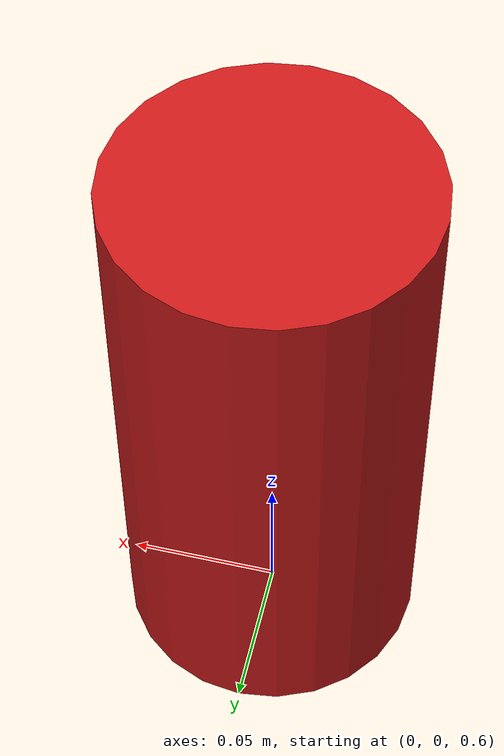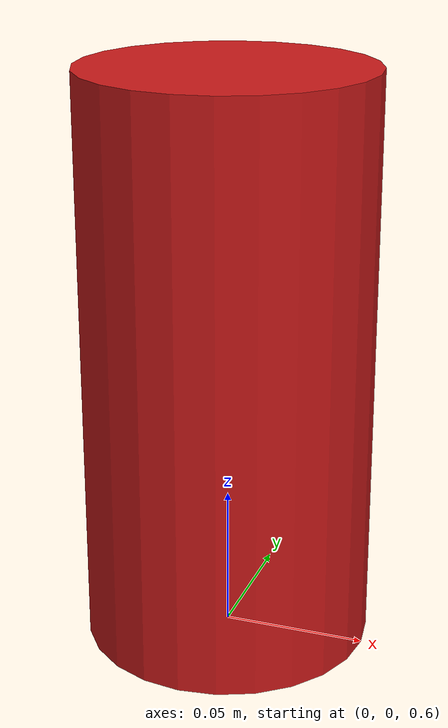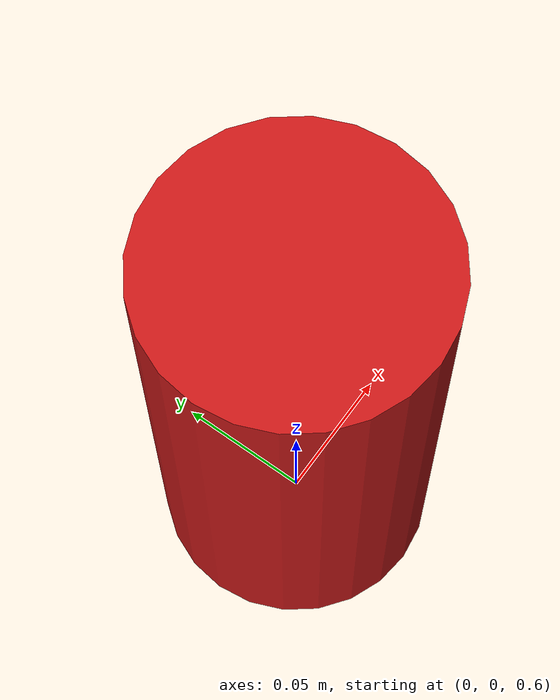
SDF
<?xml version="1.0" ?>
<sdf version="1.6">
  <world name="empty">
    <physics name="1ms" type="ignored">
      <max_step_size>0.001</max_step_size>
      <real_time_factor>1.0</real_time_factor>
    </physics>
    <plugin
      filename="gz-sim-physics-system"
      name="gz::sim::systems::Physics">
    </plugin>
    <plugin
      filename="gz-sim-user-commands-system"
      name="gz::sim::systems::UserCommands">
    </plugin>
    <plugin
      filename="gz-sim-scene-broadcaster-system"
      name="gz::sim::systems::SceneBroadcaster">
    </plugin>
    <plugin
      filename="gz-sim-contact-system"
      name="gz::sim::systems::Contact">
    </plugin>

    <light type="directional" name="sun">
      <cast_shadows>true</cast_shadows>
      <pose>0 0 10 0 0 0</pose>
      <diffuse>0.8 0.8 0.8 1</diffuse>
      <specular>0.2 0.2 0.2 1</specular>
      <attenuation>
        <range>1000</range>
        <constant>0.9</constant>
        <linear>0.01</linear>
        <quadratic>0.001</quadratic>
      </attenuation>
      <direction>-0.5 0.1 -0.9</direction>
    </light>

    <model name="ground_plane">
      <static>true</static>
      <link name="link">
        <collision name="collision">
          <geometry>
            <plane>
              <normal>0 0 1</normal>
              <size>100 100</size>
            </plane>
          </geometry>
        </collision>
        <visual name="visual">
          <geometry>
            <plane>
              <normal>0 0 1</normal>
              <size>100 100</size>
            </plane>
          </geometry>
          <material>
            <ambient>0.8 0.8 0.8 1</ambient>
            <diffuse>0.8 0.8 0.8 1</diffuse>
            <specular>0.8 0.8 0.8 1</specular>
          </material>
        </visual>
      </link>
    </model>

    <model name='target_cylinder'>
        <static>false</static>
        <pose>0 0 0.7 0 0 0</pose>
        <link name='link'>
            <inertial>
            <mass>0.2</mass>
              <inertia>
                <ixx>0.0001</ixx><ixy>0</ixy><ixz>0</ixz>
                <iyy>0.0001</iyy><iyz>0</iyz><izz>0.0001</izz>
              </inertia>
            </inertial>
            <collision name='collision'>
            <geometry>
                <cylinder>
                <radius>0.05</radius> <length>0.20</length> </cylinder>
            </geometry>
            <surface>
                <contact>
                <ode>
                    <kp>100000.0</kp> <kd>10.0</kd> </ode>
                </contact>
                <friction>
                <ode>
                    <mu>1.5</mu> <mu2>1.5</mu2>
                </ode>
                </friction>
            </surface>
            </collision>
            <visual name='visual'>
              <geometry>
                <cylinder>
                <radius>0.05</radius>
                <length>0.20</length>
                </cylinder>
              </geometry>
            <material>
                <ambient>0.8 0.1 0.1 1</ambient> <diffuse>0.8 0.1 0.1 1</diffuse>
            </material>
            </visual>
        </link>
    </model>

  </world>
</sdf>
